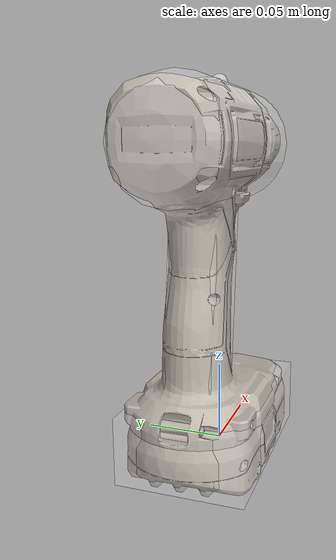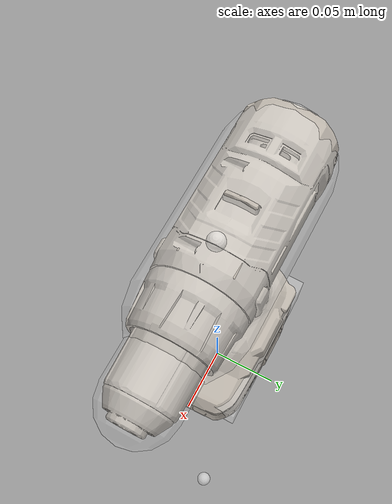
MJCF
<mujoco model="powerdrill_b01">
  <default>
    <default class="visual">
      <geom group="1" type="mesh" contype="0" conaffinity="0" density="100"/>
    </default>
    <default class="collision">
      <geom group="0" type="mesh" density="100" solimp="0.95 0.98 0.001" solref="0.004 1" rgba="1 1 1 0.25"/>
    </default>
  </default>
  <asset>
    <texture type="2d" name="t_opaque_powerdrillsbody_b01_albedo" file="textures/t_opaque_powerdrillsbody_b01_albedo.png"/>
    <material name="opaque__plastic__powerdrillsbody_b01.001" texture="t_opaque_powerdrillsbody_b01_albedo" specular="0.5" shininess="0.25"/>
    <texture type="2d" name="t_opaque_powerdrillsbattery_b01_albedo" file="textures/t_opaque_powerdrillsbattery_b01_albedo.png"/>
    <material name="opaque__plastic__powerdrillsbattery_b01.001" texture="t_opaque_powerdrillsbattery_b01_albedo" specular="0.5" shininess="0.25"/>
    <mesh file="meshes/drill_body.obj" name="drill_body"/>
    <mesh file="meshes/drill_battery.obj" name="drill_battery"/>
  </asset>
  <worldbody>
    <body>
      <body name="object">
        <body name="body" pos="0 0 0.031">
          <geom material="opaque__plastic__powerdrillsbody_b01.001" mesh="drill_body" class="visual"/>
          <geom name="collider_box_f302734d" type="box" pos="-0.035 0 0.054" size="0.02 0.014 0.08" quat="0.9981348 0 0.0610485 0" class="collision"/>
          <geom name="collider_box_8e968ea9" type="capsule" pos="-0.02 0 0.159" size="0.035 0.05" quat="0.7071068 0 0.7071068 0" class="collision"/>
          <geom name="collider_cylinder99aba387" type="capsule" pos="0.06 0 0.16" size="0.023 0.02" class="collision" quat="0.7071068 0 0.7071068 0"/>
        </body>
        <body name="battery">
          <geom material="opaque__plastic__powerdrillsbattery_b01.001" mesh="drill_battery" class="visual"/>
          <geom name="collider_box_a1f69b3d" type="box" pos="-0.014314226646665498 0 0.02" size="0.06 0.038 0.02" class="collision"/>
        </body>
      </body>
      <site name="bottom_site" pos="0 0 -2.1e-05" rgba="1 1 1 0.5" size="0.005"/>
      <site name="top_site" pos="0 0 0.225606" rgba="1 1 1 0.5" size="0.005"/>
      <site name="horizontal_radius_site" pos="0.094082 0.037778 0" rgba="1 1 1 0.5" size="0.005"/>
    </body>
  </worldbody>
</mujoco>
